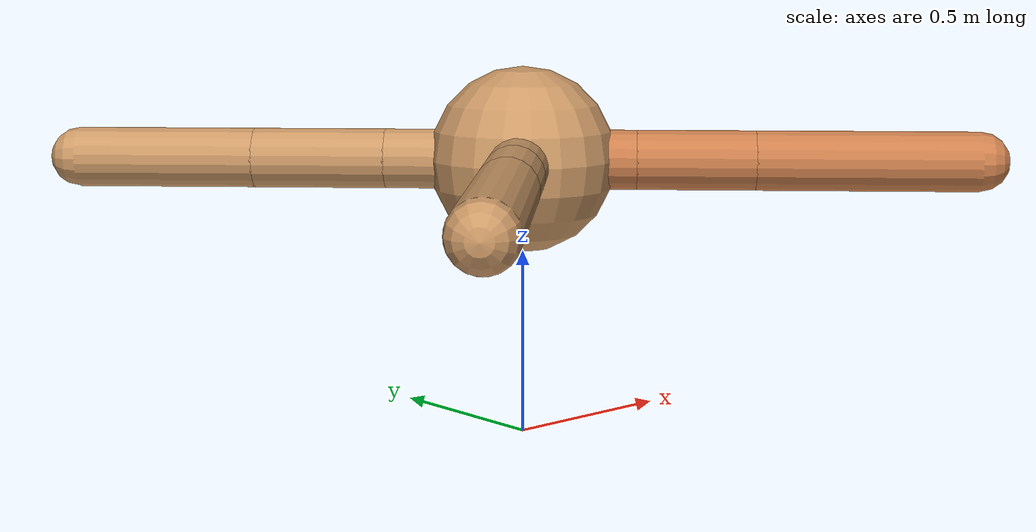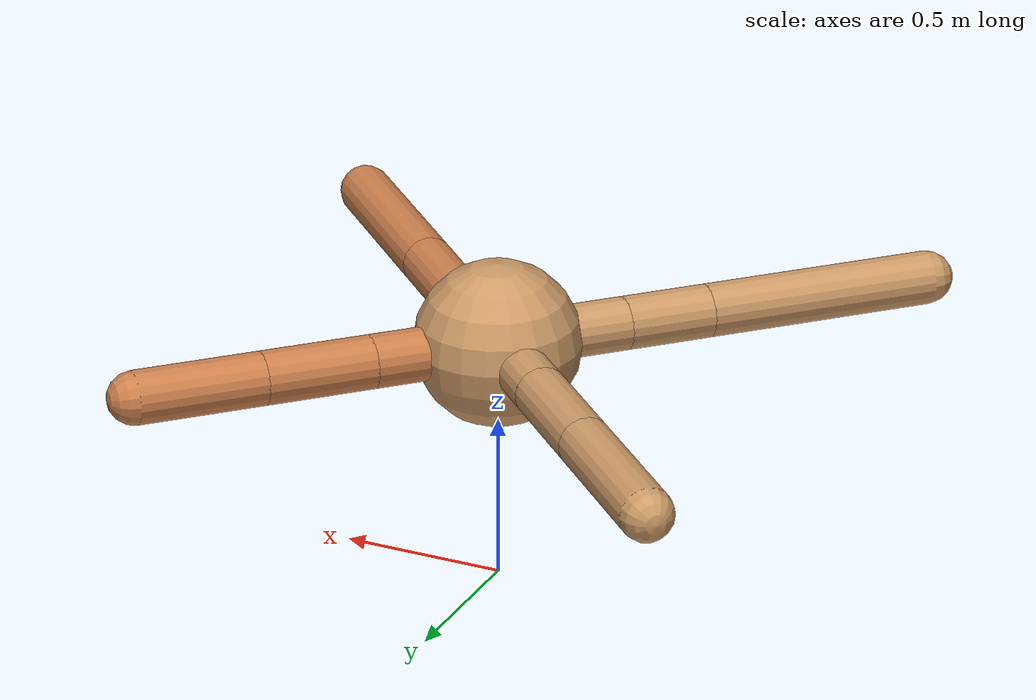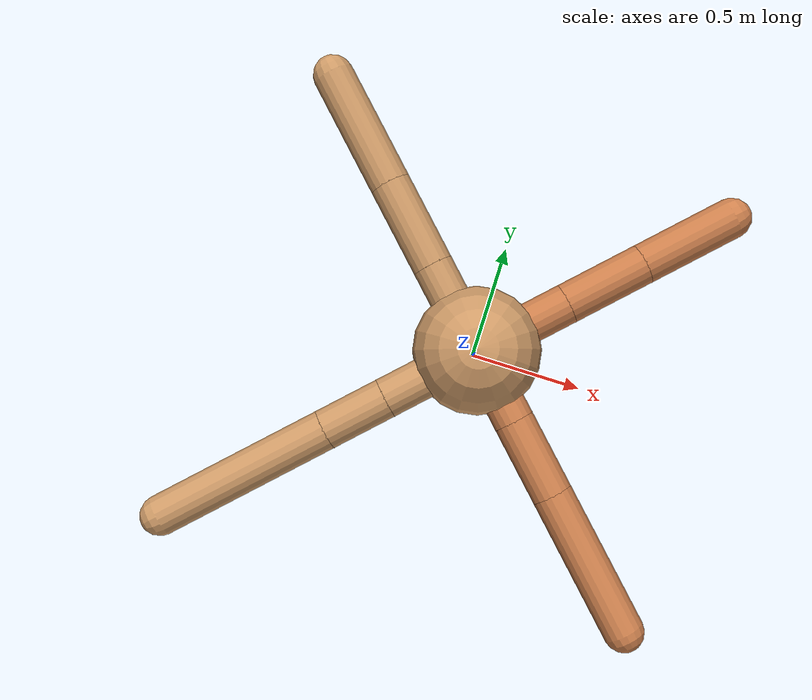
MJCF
<mujoco model="ant">
  <compiler angle="degree" coordinate="local" inertiafromgeom="true" />
  <option integrator="RK4" timestep="0.01" />
  <custom>
    <numeric data="0.0 0.0 0.55 1.0 0.0 0.0 0.0 0.0 1.0 0.0 -1.0 0.0 -1.0 0.0 1.0" name="init_qpos" />
  </custom>
  <default>
    <joint armature="1" damping="1" limited="true" />
    <geom conaffinity="0" condim="3" density="5.0" friction="1.5 0.1 0.1" margin="0.01" rgba="0.8 0.6 0.4 1" />
  </default>
  <worldbody>
    <body name="torso" pos="0 0 0.75">
      <geom name="torso_geom" pos="0 0 0" size="0.25" type="sphere" />

      <body name="front_left_leg" pos="0 0 0">
        <geom fromto="0.0 0.0 0.0 0.27557116321093583 0.27557116321093583 0.0" name="aux_1_geom" size="0.08" type="capsule" rgba=".8 .5 .3 1" />
        <body name="aux_1" pos="0.27557116321093583 0.27557116321093583 0.0">
          <joint axis="0 0 1" name="hip_1" pos="0.0 0.0 0.0" range="-40 40" type="hinge" />
          <geom fromto="0.0 0.0 0.0 0.2341972196475308 0.2341972196475308 0.0" name="left_leg_geom" size="0.08" type="capsule" rgba=".8 .5 .3 1" />
          <body pos="0.2341972196475308 0.2341972196475308 0.0" name="front_left_foot">
            <joint axis="-1 1 0" name="ankle_1" pos="0.0 0.0 0.0" range="30 100" type="hinge" />
            <geom fromto="0.0 0.0 0.0 0.27280129918459467 0.27280129918459467 0.0" name="left_ankle_geom" size="0.08" type="capsule" rgba=".8 .5 .3 1" />
          </body>
        </body>
      </body>
      <body name="front_right_leg" pos="0 0 0">
        <geom fromto="0.0 0.0 0.0 -0.2612016027449355 0.2612016027449355 0.0" name="aux_2_geom" size="0.08" type="capsule" />
        <body name="aux_2" pos="-0.2612016027449355 0.2612016027449355 0.0">
          <joint axis="0 0 1" name="hip_2" pos="0.0 0.0 0.0" range="-40 40" type="hinge" />
          <geom fromto="0.0 0.0 0.0 -0.25143413410229903 0.25143413410229903 0.0" name="right_leg_geom" size="0.08" type="capsule" />
          <body pos="-0.25143413410229903 0.25143413410229903 0.0" name="front_right_foot">
            <joint axis="1 1 0" name="ankle_2" pos="0.0 0.0 0.0" range="-100 -30" type="hinge" />
            <geom fromto="0.0 0.0 0.0 -0.3387387972084941 0.3387387972084941 0.0" name="right_ankle_geom" size="0.08" type="capsule" />
          </body>
        </body>
      </body>
      <body name="left_back_leg" pos="0 0 0">
        <geom fromto="0.0 0.0 0.0 -0.28086776901513877 -0.28086776901513877 0.0" name="aux_3_geom" size="0.08" type="capsule" />
        <body name="aux_3" pos="-0.28086776901513877 -0.28086776901513877 0.0">
          <joint axis="0 0 1" name="hip_3" pos="0.0 0.0 0.0" range="-40 40" type="hinge" />
          <geom fromto="0.0 0.0 0.0 -0.18479467020370577 -0.18479467020370577 0.0" name="back_leg_geom" size="0.08" type="capsule" />
          <body pos="-0.18479467020370577 -0.18479467020370577 0.0" name="left_back_foot">
            <joint axis="-1 1 0" name="ankle_3" pos="0.0 0.0 0.0" range="-100 -30" type="hinge" />
            <geom fromto="0.0 0.0 0.0 -0.5021549108700268 -0.5021549108700268 0.0" name="third_ankle_geom" size="0.08" type="capsule" />
          </body>
        </body>
      </body>
      <body name="right_back_leg" pos="0 0 0">
        <geom fromto="0.0 0.0 0.0 0.21658455588999947 -0.21658455588999947 0.0" name="aux_4_geom" size="0.08" type="capsule" rgba=".8 .5 .3 1" />
        <body name="aux_4" pos="0.21658455588999947 -0.21658455588999947 0.0">
          <joint axis="0 0 1" name="hip_4" pos="0.0 0.0 0.0" range="-40 40" type="hinge" />
          <geom fromto="0.0 0.0 0.0 0.2236512906076097 -0.2236512906076097 0.0" name="rightback_leg_geom" size="0.08" type="capsule" rgba=".8 .5 .3 1" />
          <body pos="0.2236512906076097 -0.2236512906076097 0.0" name="right_back_foot">
            <joint axis="1 1 0" name="ankle_4" pos="0.0 0.0 0.0" range="30 100" type="hinge" />
            <geom fromto="0.0 0.0 0.0 0.4183405921422392 -0.4183405921422392 0.0" name="fourth_ankle_geom" size="0.08" type="capsule" rgba=".8 .5 .3 1" />
          </body>
        </body>
      </body>
    </body>
  </worldbody>
  <actuator>
    <motor ctrllimited="true" ctrlrange="-1.0 1.0" joint="hip_4" gear="150" />
    <motor ctrllimited="true" ctrlrange="-1.0 1.0" joint="ankle_4" gear="150" />
    <motor ctrllimited="true" ctrlrange="-1.0 1.0" joint="hip_1" gear="150" />
    <motor ctrllimited="true" ctrlrange="-1.0 1.0" joint="ankle_1" gear="150" />
    <motor ctrllimited="true" ctrlrange="-1.0 1.0" joint="hip_2" gear="150" />
    <motor ctrllimited="true" ctrlrange="-1.0 1.0" joint="ankle_2" gear="150" />
    <motor ctrllimited="true" ctrlrange="-1.0 1.0" joint="hip_3" gear="150" />
    <motor ctrllimited="true" ctrlrange="-1.0 1.0" joint="ankle_3" gear="150" />
  </actuator>
</mujoco>
